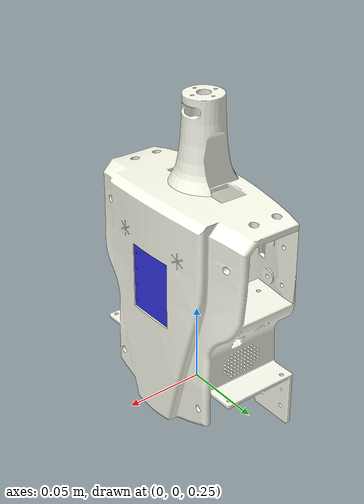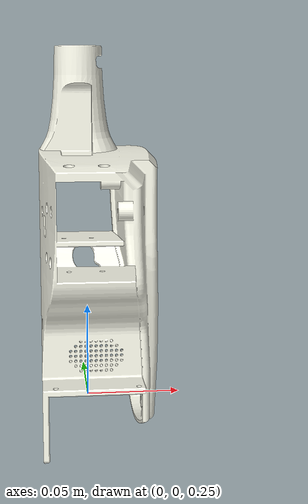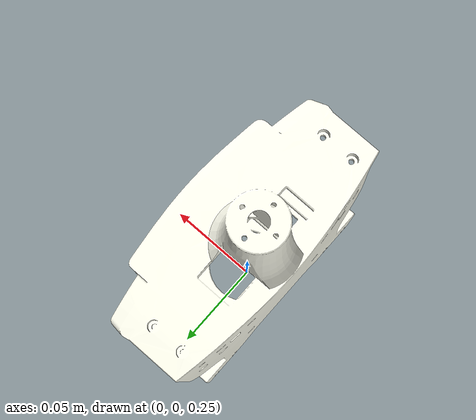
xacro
<?xml version="1.0" ?>
<robot xmlns:xacro="http://ros.org/wiki/xacro" name="mh5_robot">

    <xacro:macro name="material_ivory">
        <material name="ivory">
            <color rgba="1 1 0.94 1"/>
        </material>
    </xacro:macro>

    <xacro:macro name="material_black">
        <material name="black">
            <color rgba="0.1 0.1 0.1 1"/>
        </material>
    </xacro:macro>

    <link name="base_link"/>

    <link name="chest">
        <visual>
            <origin rpy="0.0 0 ${pi/2}" xyz="0 0 0"/>
            <geometry>
                <mesh filename="package://mh5_description/meshes/chest.stl"/>
            </geometry>
            <xacro:material_ivory/>
        </visual>
        <collision>
            <origin rpy="0.0 0 ${pi/2}" xyz="0 0 0"/>
            <geometry>
                <mesh filename="package://mh5_description/meshes/chest.stl"/>
            </geometry>
        </collision>
        <inertial>
            <mass value="0.125444"/>
            <inertia ixx="0.000328549" iyy="0.00043996" izz="0.000219472"
                     ixy="0"           ixz="0"          iyz="0.000004439" />
        </inertial>
    </link>

    <joint name="chest_fixed" type="fixed">
        <parent link="base_link"/>
        <child link="chest"/>
        <origin xyz="0 0 0.27225" rpy="0 0 0"/>
    </joint>

    <link name="screen">
        <visual>
            <origin rpy="${-pi/2} 0 ${-pi/2}" xyz="0 0 0"/>
            <geometry>
                <mesh filename="package://mh5_description/meshes/screen.stl"/>
            </geometry>
            <material name="blue">
                <color rgba="0.2 0.2 0.9 1"/>
            </material>
        </visual>
        <collision>
            <origin rpy="${-pi/2} 0 ${-pi/2}" xyz="0 0 0"/>
            <geometry>
                <mesh filename="package://mh5_description/meshes/screen.stl"/>
            </geometry>
        </collision>
        <inertial>
            <mass value="0.0176"/>
            <inertia ixx="0.000004545" iyy="0.000006293" izz="0.00000182"
                     ixy="0"           ixz="0"          iyz="0" />
        </inertial>
    </link>

    <joint name="screen_fixed" type="fixed">
        <parent link="chest"/>
        <child link="screen"/>
        <origin xyz="0.02935 0 0.05426" rpy="0 0 0"/>
    </joint>

</robot>
